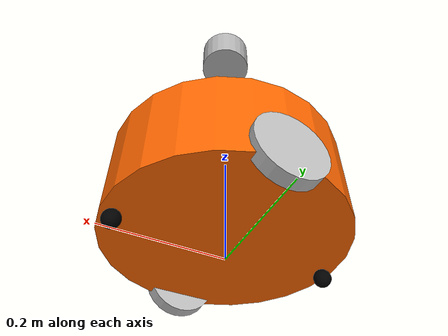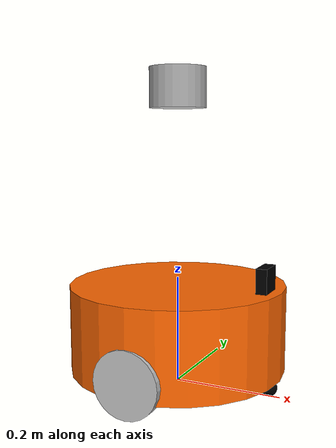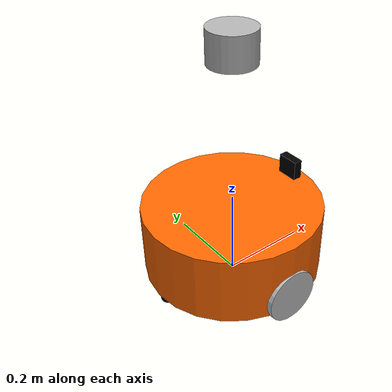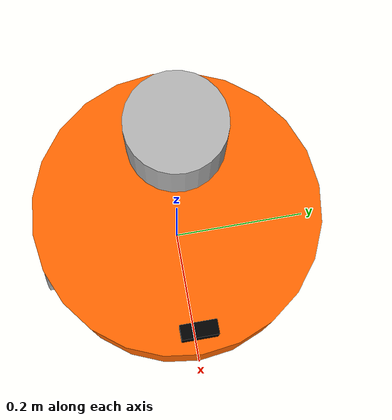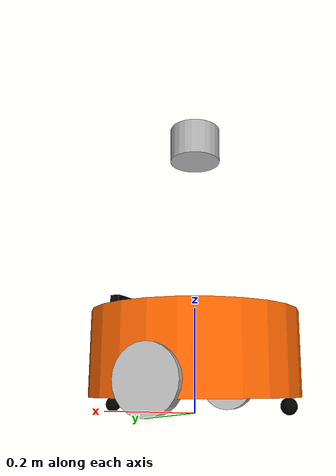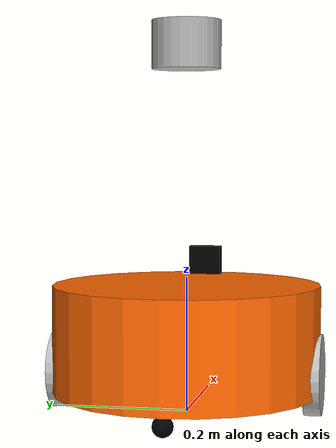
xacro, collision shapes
<?xml version="1.0"?>
<robot name="arm" xmlns:xacro="http://www.ros.org/wiki/xacro">

    <xacro:include filename="$(find simbot)/urdf/xacro/robot_base.xacro" />
    <xacro:include filename="$(find simbot)/urdf/xacro/robot_camera.xacro" />
    <xacro:include filename="$(find velodyne_description)/urdf/VLP-16.urdf.xacro"/>
    <xacro:include filename="$(find simbot)/urdf/xacro/robot_lidar.xacro"/>
    <!--xacro:include filename="$(find realsense_ros_gazebo)/xacro/depthcam.xacro"/-->

    <xacro:property name="camera_offset_x" value="0.17" />
    <xacro:property name="camera_offset_y" value="0.0" />
    <xacro:property name="camera_offset_z" value="0.10" />
    <xacro:property name="lidar_offset_x" value="0.17" />
    <xacro:property name="lidar_offset_y" value="0.0" />
    <xacro:property name="lidar_offset_z" value="0.16" />

    <xacro:arg name="gpu" default="false"/>
    <xacro:property name="gpu" value="$(arg gpu)" />
    <xacro:arg name="organize_cloud" default="false"/>
    <xacro:property name="organize_cloud" value="$(arg organize_cloud)" />

    <xacro:mbot_base_gazebo/>

    <!-- Camera -->
    <joint name="camera_joint" type="fixed">
        <origin xyz="${camera_offset_x} ${camera_offset_y} ${camera_offset_z}" rpy="0 0 0" />
        <parent link="base_link"/>
        <child link="camera_link"/>
    </joint>

    <xacro:usb_camera prefix="camera"/>

    <!-- VLP-16 lidar-->
    <xacro:VLP-16 parent="base_link" name="velodyne" topic="/velodyne_points" organize_cloud="${organize_cloud}" hz="10" samples="440" gpu="${gpu}">
         <origin xyz="0 0 0.4" rpy="0 0 0" />
    </xacro:VLP-16>

</robot>

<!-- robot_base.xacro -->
<robot name="mbot" xmlns:xacro="http://www.ros.org/wiki/xacro">

    <!-- PROPERTY LIST -->
    <xacro:property name="M_PI" value="3.1415926"/>
    <xacro:property name="base_mass"   value="20" />
    <xacro:property name="base_radius" value="0.20"/>
    <xacro:property name="base_length" value="0.16"/>

    <xacro:property name="wheel_mass"   value="2" />
    <xacro:property name="wheel_radius" value="0.06"/>
    <xacro:property name="wheel_length" value="0.025"/>
    <xacro:property name="wheel_joint_y" value="0.19"/>
    <xacro:property name="wheel_joint_z" value="0.05"/>

    <xacro:property name="caster_mass"    value="0.5" />
    <xacro:property name="caster_radius"  value="0.015"/> <!-- wheel_radius - ( base_length/2 - wheel_joint_z) -->
    <xacro:property name="caster_joint_x" value="0.18"/>

    <!-- Defining the colors used in this robot -->
    <material name="yellow">
        <color rgba="1 0.4 0 1"/>
    </material>
    <material name="black">
        <color rgba="0 0 0 0.95"/>
    </material>
    <material name="gray">
        <color rgba="0.75 0.75 0.75 1"/>
    </material>

    <!-- Macro for inertia matrix -->
    <xacro:macro name="sphere_inertial_matrix" params="m r">
        <inertial>
            <mass value="${m}" />
            <inertia ixx="${2*m*r*r/5}" ixy="0" ixz="0"
                iyy="${2*m*r*r/5}" iyz="0"
                izz="${2*m*r*r/5}" />
        </inertial>
    </xacro:macro>

    <xacro:macro name="cylinder_inertial_matrix" params="m r h">
        <inertial>
            <mass value="${m}" />
            <inertia ixx="${m*(3*r*r+h*h)/12}" ixy = "0" ixz = "0"
                iyy="${m*(3*r*r+h*h)/12}" iyz = "0"
                izz="${m*r*r/2}" />
        </inertial>
    </xacro:macro>

    <!-- Macro for robot wheel -->
    <xacro:macro name="wheel" params="prefix reflect">
        <joint name="${prefix}_wheel_joint" type="continuous">
            <origin xyz="0 ${reflect*wheel_joint_y} ${-wheel_joint_z}" rpy="0 0 0"/>
            <parent link="base_link"/>
            <child link="${prefix}_wheel_link"/>
            <axis xyz="0 1 0"/>
        </joint>

        <link name="${prefix}_wheel_link">
            <visual>
                <origin xyz="0 0 0" rpy="${M_PI/2} 0 0" />
                <geometry>
                    <cylinder radius="${wheel_radius}" length = "${wheel_length}"/>
                </geometry>
                <material name="gray" />
            </visual>
            <collision>
                <origin xyz="0 0 0" rpy="${M_PI/2} 0 0" />
                <geometry>
                    <cylinder radius="${wheel_radius}" length = "${wheel_length}"/>
                </geometry>
            </collision>
            <cylinder_inertial_matrix  m="${wheel_mass}" r="${wheel_radius}" h="${wheel_length}" />
        </link>

        <gazebo reference="${prefix}_wheel_link">
            <material>Gazebo/Gray</material>
        </gazebo>

        <!-- Transmission is important to link the joints and the controller-->
        <transmission name="${prefix}_wheel_joint_trans">
            <type>transmission_interface/SimpleTransmission</type>
            <joint name="${prefix}_wheel_joint" >
                <hardwareInterface>hardware_interface/VelocityJointInterface</hardwareInterface>
            </joint>
            <actuator name="${prefix}_wheel_joint_motor">
                <hardwareInterface>hardware_interface/VelocityJointInterface</hardwareInterface>
                <mechanicalReduction>1</mechanicalReduction>
            </actuator>
        </transmission>
    </xacro:macro>

    <!-- Macro for robot caster -->
    <xacro:macro name="caster" params="prefix reflect">
        <joint name="${prefix}_caster_joint" type="continuous">
            <origin xyz="${reflect*caster_joint_x} 0 ${-(base_length/2 + caster_radius)}" rpy="0 0 0"/>
            <parent link="base_link"/>
            <child link="${prefix}_caster_link"/>
            <axis xyz="0 1 0"/>
        </joint>

        <link name="${prefix}_caster_link">
            <visual>
                <origin xyz="0 0 0" rpy="0 0 0"/>
                <geometry>
                    <sphere radius="${caster_radius}" />
                </geometry>
                <material name="black" />
            </visual>
            <collision>
                <origin xyz="0 0 0" rpy="0 0 0"/>
                <geometry>
                    <sphere radius="${caster_radius}" />
                </geometry>
            </collision>
            <sphere_inertial_matrix  m="${caster_mass}" r="${caster_radius}" />
        </link>

        <gazebo reference="${prefix}_caster_link">
            <material>Gazebo/Black</material>
        </gazebo>
    </xacro:macro>

    <!-- Macro for robot body -->
    <xacro:macro name="mbot_base_gazebo">
        <link name="base_footprint">
            <visual>
                <origin xyz="0 0 0" rpy="0 0 0" />
                <geometry>
                    <box size="0.001 0.001 0.001" />
                </geometry>
            </visual>
        </link>
        <gazebo reference="base_footprint">
            <turnGravityOff>false</turnGravityOff>
        </gazebo>

        <joint name="base_footprint_joint" type="fixed">
            <origin xyz="0 0 ${base_length/2 + caster_radius*2}" rpy="0 0 0" />
            <parent link="base_footprint"/>
            <child link="base_link" />
        </joint>

        <link name="base_link">
            <visual>
                <origin xyz=" 0 0 0" rpy="0 0 0" />
                <geometry>
                    <cylinder length="${base_length}" radius="${base_radius}"/>
                </geometry>
                <material name="yellow" />
            </visual>
            <collision>
                <origin xyz=" 0 0 0" rpy="0 0 0" />
                <geometry>
                    <cylinder length="${base_length}" radius="${base_radius}"/>
                </geometry>
            </collision>
            <cylinder_inertial_matrix  m="${base_mass}" r="${base_radius}" h="${base_length}" />
        </link>

        <gazebo reference="base_link">
            <material>Gazebo/Blue</material>
        </gazebo>

        <wheel prefix="left"  reflect="1"/>
        <wheel prefix="right" reflect="-1"/>

        <caster prefix="front" reflect="-1"/>
        <caster prefix="back"  reflect="1"/>

        <!-- controller -->
        <gazebo>
            <plugin name="differential_drive_controller"
                    filename="libgazebo_ros_diff_drive.so">
                <rosDebugLevel>Debug</rosDebugLevel>
                <publishWheelTF>true</publishWheelTF>
                <robotNamespace>/</robotNamespace>
                <publishTf>1</publishTf>
                <publishWheelJointState>true</publishWheelJointState>
                <alwaysOn>true</alwaysOn>
                <updateRate>100.0</updateRate>
                <legacyMode>true</legacyMode>
                <leftJoint>left_wheel_joint</leftJoint>
                <rightJoint>right_wheel_joint</rightJoint>
                <wheelSeparation>${wheel_joint_y*2}</wheelSeparation>
                <wheelDiameter>${2*wheel_radius}</wheelDiameter>
                <broadcastTF>1</broadcastTF>
                <wheelTorque>30</wheelTorque>
                <wheelAcceleration>1.8</wheelAcceleration>
                <commandTopic>cmd_vel</commandTopic>
                <odometryFrame>odom</odometryFrame>
                <odometryTopic>odom</odometryTopic>
                <odometrySource>world</odometrySource>
                <publishOdomTF>1</publishOdomTF>
                <robotBaseFrame>base_footprint</robotBaseFrame>
            </plugin>
        </gazebo>

	  <!-- Macro for IMU -->
	  <gazebo reference="base_link">
	    <gravity>true</gravity>
	    <sensor name="imu_sensor" type="imu">
	      <always_on>true</always_on>
	      <update_rate>100</update_rate>
	      <visualize>true</visualize>
	      <topic>__default_topic__</topic>
	      <plugin filename="libgazebo_ros_imu_sensor.so" name="imu_plugin">
		<topicName>imu</topicName>
		<bodyName>base_link</bodyName>
		<updateRateHZ>10.0</updateRateHZ>
		<gaussianNoise>0.0</gaussianNoise>
		<xyzOffset>0 0 0</xyzOffset>
		<rpyOffset>0 0 0</rpyOffset>
		<frameName>imu_link</frameName>
		<initialOrientationAsReference>false</initialOrientationAsReference>
	      </plugin>
	      <pose>0 0 0 0 0 0</pose>
	    </sensor>
	  </gazebo>

    </xacro:macro>

</robot>

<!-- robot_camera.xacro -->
<robot xmlns:xacro="http://www.ros.org/wiki/xacro" name="camera">

    <xacro:macro name="usb_camera" params="prefix:=camera">
        <!-- Create laser reference frame -->
        <link name="${prefix}_link">
            <inertial>
                <mass value="0.1" />
                <origin xyz="0 0 0" />
                <inertia ixx="0.01" ixy="0.0" ixz="0.0"
                         iyy="0.01" iyz="0.0"
                         izz="0.01" />
            </inertial>

            <visual>
                <origin xyz=" 0 0 0 " rpy="0 0 0" />
                <geometry>
                    <box size="0.02 0.05 0.05" />
                </geometry>
                <material name="black"/>
            </visual>

            <collision>
                <origin xyz="0.0 0.0 0.0" rpy="0 0 0" />
                <geometry>
                    <box size="0.02 0.05 0.05" />
                </geometry>
            </collision>
        </link>
        <gazebo reference="${prefix}_link">
            <material>Gazebo/Blue</material>
        </gazebo>

        <gazebo reference="${prefix}_link">
            <sensor type="camera" name="camera_node">
                <update_rate>30.0</update_rate>
                <camera name="head">
                    <horizontal_fov>1.3962634</horizontal_fov>
                    <image>
                        <width>1280</width>
                        <height>720</height>
                        <format>R8G8B8</format>
                    </image>
                    <clip>
                        <near>0.02</near>
                        <far>300</far>
                    </clip>
                    <noise>
                        <type>gaussian</type>
                        <mean>0.0</mean>
                        <stddev>0.007</stddev>
                    </noise>
                </camera>
                <plugin name="gazebo_camera" filename="libgazebo_ros_camera.so">
                    <alwaysOn>true</alwaysOn>
                    <updateRate>0.0</updateRate>
                    <cameraName>/camera</cameraName>
                    <imageTopicName>image_raw</imageTopicName>
                    <cameraInfoTopicName>camera_info</cameraInfoTopicName>
                    <frameName>camera_link</frameName>
                    <hackBaseline>0.07</hackBaseline>
                    <distortionK1>0.0</distortionK1>
                    <distortionK2>0.0</distortionK2>
                    <distortionK3>0.0</distortionK3>
                    <distortionT1>0.0</distortionT1>
                    <distortionT2>0.0</distortionT2>
                </plugin>
            </sensor>
        </gazebo>

    </xacro:macro>
</robot>

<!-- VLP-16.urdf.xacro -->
<robot xmlns:xacro="http://www.ros.org/wiki/xacro" name="VLP-16">
  <xacro:property name="M_PI" value="3.1415926535897931" />
  <xacro:macro name="VLP-16" params="*origin is_sim:=true parent:=base_link name:=velodyne tf_prefix:='' topic:=/velodyne_points organize_cloud:=false hz:=10 lasers:=16 samples:=1875 collision_range:=0.3 min_range:=0.0 max_range:=100.0 noise:=0.008 min_angle:=-${M_PI} max_angle:=${M_PI} gpu:=false">

    <joint name="${name}_base_mount_joint" type="fixed">
      <xacro:insert_block name="origin" />
      <parent link="${parent}"/>
      <child link="${name}_base_link"/>
    </joint>

    <link name="${name}_base_link">
      <inertial>
        <mass value="0.83"/>
        <origin xyz="0 0 0.03585"/>
        <inertia ixx="${(0.83 * (3.0*0.0516*0.0516 + 0.0717*0.0717)) / 12.0}" ixy="0" ixz="0"
          iyy="${(0.83 * (3.0*0.0516*0.0516 + 0.0717*0.0717)) / 12.0}" iyz="0"
          izz="${0.5 * 0.83 * (0.0516*0.0516)}"/>
      </inertial>
      <visual>
        <geometry>
          <mesh filename="package://velodyne_description/meshes/VLP16_base_1.dae" />
        </geometry>
      </visual>
      <visual>
        <geometry>
          <mesh filename="package://velodyne_description/meshes/VLP16_base_2.dae" />
        </geometry>
      </visual>
      <collision>
        <origin rpy="0 0 0" xyz="0 0 0.03585"/>
        <geometry>
          <cylinder radius="0.0516" length="0.0717"/>
        </geometry>
      </collision>
    </link>

    <joint name="${name}_base_scan_joint" type="fixed" >
      <origin xyz="0 0 0.0377" rpy="0 0 0" />
      <parent link="${name}_base_link" />
      <child link="${name}"/>
    </joint>

    <link name="${name}">
      <inertial>
        <mass value="0.01"/>
        <origin xyz="0 0 0"/>
        <inertia ixx="1e-7" ixy="0" ixz="0" iyy="1e-7" iyz="0" izz="1e-7"/>
      </inertial>
      <visual>
        <origin xyz="0 0 -0.0377" />
        <geometry>
          <mesh filename="package://velodyne_description/meshes/VLP16_scan.dae" />
        </geometry>
      </visual>
      <collision>
        <geometry>
          <sphere radius="0"/>
        </geometry>
      </collision>
    </link>

    <!-- Gazebo requires the velodyne_gazebo_plugins package -->
    <xacro:if value="${is_sim}">
        <gazebo reference="${name}">
            <xacro:if value="${gpu}">
                <sensor type="gpu_ray" name="${name}-VLP16">
                <pose>0 0 0 0 0 0</pose>
                <visualize>false</visualize>
                <update_rate>${hz}</update_rate>
                <ray>
                    <scan>
                    <horizontal>
                        <samples>${samples}</samples>
                        <resolution>1</resolution>
                        <min_angle>${min_angle}</min_angle>
                        <max_angle>${max_angle}</max_angle>
                    </horizontal>
                    <vertical>
                        <samples>${lasers}</samples>
                        <resolution>1</resolution>
                        <min_angle>-${15.0*M_PI/180.0}</min_angle>
                        <max_angle> ${15.0*M_PI/180.0}</max_angle>
                    </vertical>
                    </scan>
                    <range>
                    <min>${collision_range}</min>
                    <max>${max_range+1}</max>
                    <resolution>0.001</resolution>
                    </range>
                    <noise>
                    <type>gaussian</type>
                    <mean>0.0</mean>
                    <stddev>0.0</stddev>
                    </noise>
                </ray>
                <plugin name="gazebo_ros_laser_controller" filename="libgazebo_ros_velodyne_laser.so">
                    <ros>
                    <namespace>/${name}</namespace>
                    <remapping>~/out:=${topic}</remapping>
                    </ros>
                    <tf_prefix>${tf_prefix}</tf_prefix>
                    <frame_name>${name}</frame_name>
                    <organize_cloud>${organize_cloud}</organize_cloud>
                    <min_range>${min_range}</min_range>
                    <max_range>${max_range}</max_range>
                    <gaussian_noise>${noise}</gaussian_noise>
                </plugin>
                </sensor>
            </xacro:if>
            <xacro:unless value="${gpu}">
                <sensor type="ray" name="${name}-VLP16">
                <pose>0 0 0 0 0 0</pose>
                <visualize>false</visualize>
                <update_rate>${hz}</update_rate>
                <ray>
                    <scan>
                    <horizontal>
                        <samples>${samples}</samples>
                        <resolution>1</resolution>
                        <min_angle>${min_angle}</min_angle>
                        <max_angle>${max_angle}</max_angle>
                    </horizontal>
                    <vertical>
                        <samples>${lasers}</samples>
                        <resolution>1</resolution>
                        <min_angle>-${15.0*M_PI/180.0}</min_angle>
                        <max_angle> ${15.0*M_PI/180.0}</max_angle>
                    </vertical>
                    </scan>
                    <range>
                    <min>${collision_range}</min>
                    <max>${max_range+1}</max>
                    <resolution>0.001</resolution>
                    </range>
                    <noise>
                    <type>gaussian</type>
                    <mean>0.0</mean>
                    <stddev>0.0</stddev>
                    </noise>
                </ray>
                <plugin name="gazebo_ros_laser_controller" filename="libgazebo_ros_velodyne_laser.so">
                    <ros>
                    <namespace>/${name}</namespace>
                    <remapping>~/out:=${topic}</remapping>
                    </ros>
                    <tf_prefix>${tf_prefix}</tf_prefix>
                    <frame_name>${name}</frame_name>
                    <organize_cloud>${organize_cloud}</organize_cloud>
                    <min_range>${min_range}</min_range>
                    <max_range>${max_range}</max_range>
                    <gaussian_noise>${noise}</gaussian_noise>
                </plugin>
                </sensor>
            </xacro:unless>
        </gazebo>
    </xacro:if>

  </xacro:macro>
</robot>
